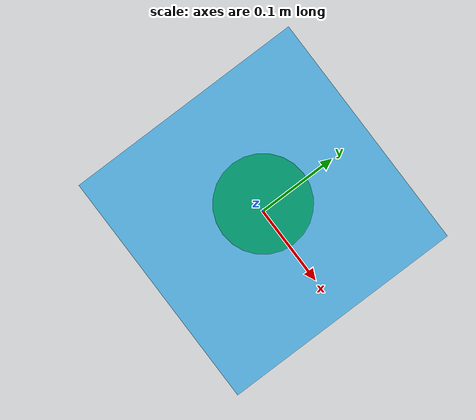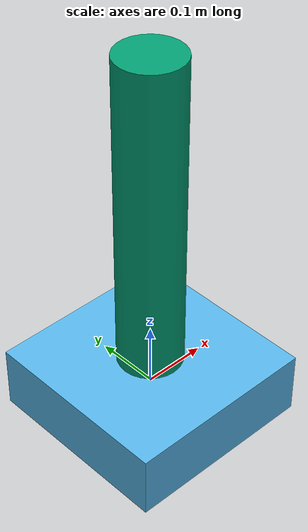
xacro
<?xml version="1.0"?>
<robot name="simple_arm" xmlns:xacro="http://www.ros.org/wiki/xacro">

  <link name="world"/>

  <link name="base_link">
    <visual>
      <geometry>
        <box size="0.3 0.3 0.1"/>
      </geometry>
    </visual>
    <collision>
      <geometry>
        <box size="0.3 0.3 0.1"/>
      </geometry>
    </collision>
    <inertial>
      <mass value="1.0"/>
      <inertia ixx="0.01" iyy="0.01" izz="0.01"
               ixy="0" ixz="0" iyz="0"/>
    </inertial>
  </link>

  <link name="arm_link">
    <visual>
      <geometry>
        <cylinder length="0.5" radius="0.05"/>
      </geometry>
      <origin xyz="0 0 0.25"/>
    </visual>
    <collision>
      <geometry>
        <cylinder length="0.5" radius="0.05"/>
      </geometry>
      <origin xyz="0 0 0.25"/>
    </collision>
    <inertial>
      <mass value="0.5"/>
      <origin xyz="0 0 0.25"/>
      <inertia ixx="0.005" iyy="0.005" izz="0.001"
               ixy="0" ixz="0" iyz="0"/>
    </inertial>
  </link>

  <joint name="world_joint" type="fixed">
    <parent link="world"/>
    <child link="base_link"/>
  </joint>

  <joint name="joint1" type="revolute">
    <parent link="base_link"/>
    <child link="arm_link"/>
    <origin xyz="0 0 0.05"/>
    <axis xyz="0 1 0"/>
    <limit lower="-3.14" upper="3.14" effort="10" velocity="2.0"/>
  </joint>

  <ros2_control name="GazeboSystem" type="system">
    <hardware>
      <plugin>gz_ros2_control/GazeboSimSystem</plugin>
    </hardware>

    <joint name="joint1">
      <command_interface name="position"/>
      <state_interface name="position"/>
      <state_interface name="velocity"/>
    </joint>
  </ros2_control>

  <gazebo>
    <plugin filename="gz_ros2_control-system"
            name="gz_ros2_control::GazeboSimROS2ControlPlugin">
      <parameters>$(find my_arm_description)/config/arm_controllers.yaml</parameters>
    </plugin>
  </gazebo>

</robot>
